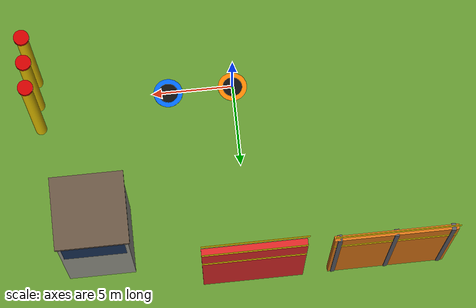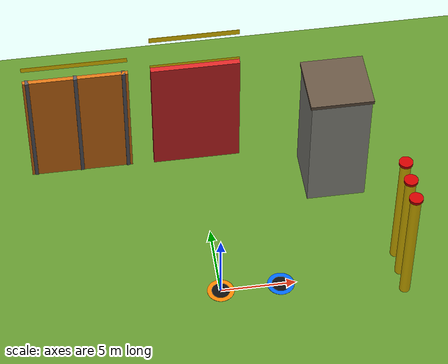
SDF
<sdf version="1.9">
 <world name="obstacle_course">
  <physics type="ode">
   <max_step_size>0.004</max_step_size>
   <real_time_factor>1.0</real_time_factor>
   <real_time_update_rate>250</real_time_update_rate>
  </physics>
  <gravity>0 0 -9.8</gravity>
  <magnetic_field>6e-06 2.3e-05 -4.2e-05</magnetic_field>
  <atmosphere type="adiabatic"/>
  <scene>
   <sky><clouds><speed>6</speed></clouds></sky>
   <grid>false</grid>
   <ambient>0.6 0.6 0.55 1</ambient>
   <background>0.53 0.77 0.92 1</background>
   <shadows>true</shadows>
  </scene>
  <light name="sun" type="directional">
   <pose>0 0 500 0 0 0</pose>
   <intensity>1</intensity>
   <direction>-0.5 0.3 -0.8</direction>
   <diffuse>0.95 0.90 0.80 1</diffuse>
   <specular>0.30 0.28 0.24 1</specular>
   <attenuation><range>2000</range><linear>0</linear><constant>1</constant><quadratic>0</quadratic></attenuation>
   <spot><inner_angle>0</inner_angle><outer_angle>0</outer_angle><falloff>0</falloff></spot>
  </light>
  <light name="sky_fill" type="directional">
   <cast_shadows>false</cast_shadows>
   <pose>0 0 100 0 0 0</pose>
   <direction>0 0 -1</direction>
   <diffuse>0.35 0.45 0.55 1</diffuse>
   <specular>0.05 0.05 0.05 1</specular>
   <attenuation><range>2000</range><constant>1</constant><linear>0</linear><quadratic>0</quadratic></attenuation>
  </light>
  <model name="grass_ground">
   <static>true</static>
   <link name="link">
    <collision name="collision">
     <geometry><plane><normal>0 0 1</normal><size>1 1</size></plane></geometry>
     <surface>
      <friction><ode><mu>0.8</mu><mu2>0.8</mu2></ode></friction>
      <contact><collide_bitmask>65535</collide_bitmask></contact>
     </surface>
    </collision>
    <visual name="visual">
     <cast_shadows>false</cast_shadows>
     <geometry><plane><normal>0 0 1</normal><size>300 300</size></plane></geometry>
     <material>
      <ambient>0.28 0.45 0.12 1</ambient>
      <diffuse>0.38 0.58 0.18 1</diffuse>
      <specular>0.02 0.03 0.01 1</specular>
     </material>
    </visual>
   </link>
  </model>
  <spherical_coordinates>
   <surface_model>EARTH_WGS84</surface_model>
   <world_frame_orientation>ENU</world_frame_orientation>
   <latitude_deg>47.397971057728974</latitude_deg>
   <longitude_deg>8.546163739800146</longitude_deg>
   <elevation>0</elevation>
  </spherical_coordinates>
  <model name="landing_pad_0">
   <static>true</static>
   <pose>0 0 0.005 0 0 0</pose>
   <link name="link">
    <visual name="vis_ring">
     <geometry><cylinder><radius>0.9</radius><length>0.01</length></cylinder></geometry>
     <material><ambient>0.9 0.4 0.0 1</ambient><diffuse>1.0 0.5 0.0 1</diffuse></material>
    </visual>
    <visual name="vis_inner">
     <pose>0 0 0.001 0 0 0</pose>
     <geometry><cylinder><radius>0.6</radius><length>0.01</length></cylinder></geometry>
     <material><ambient>0.0 0.0 0.0 1</ambient><diffuse>0.05 0.05 0.05 1</diffuse></material>
    </visual>
    <visual name="vis_label_n">
     <pose>0 0.35 0.002 0 0 0</pose>
     <geometry><box><size>0.06 0.3 0.01</size></box></geometry>
     <material><ambient>0.9 0.9 0.9 1</ambient><diffuse>1 1 1 1</diffuse></material>
    </visual>
    <collision name="col">
     <geometry><cylinder><radius>0.9</radius><length>0.01</length></cylinder></geometry>
    </collision>
   </link>
  </model>
  <model name="landing_pad_1">
   <static>true</static>
   <pose>4 0 0.005 0 0 0</pose>
   <link name="link">
    <visual name="vis_ring">
     <geometry><cylinder><radius>0.9</radius><length>0.01</length></cylinder></geometry>
     <material><ambient>0.0 0.3 0.9 1</ambient><diffuse>0.0 0.4 1.0 1</diffuse></material>
    </visual>
    <visual name="vis_inner">
     <pose>0 0 0.001 0 0 0</pose>
     <geometry><cylinder><radius>0.6</radius><length>0.01</length></cylinder></geometry>
     <material><ambient>0.0 0.0 0.0 1</ambient><diffuse>0.05 0.05 0.05 1</diffuse></material>
    </visual>
    <collision name="col">
     <geometry><cylinder><radius>0.9</radius><length>0.01</length></cylinder></geometry>
    </collision>
   </link>
  </model>
  <model name="obstacle_wall_north">
   <static>true</static>
   <pose>0 12 4.5 0 0 0</pose>
   <link name="link">
    <collision name="col">
     <geometry><box><size>6.0 0.4 9.0</size></box></geometry>
     <surface>
      <friction><ode><mu>1.0</mu><mu2>1.0</mu2></ode></friction>
      <contact><collide_bitmask>65535</collide_bitmask></contact>
     </surface>
    </collision>
    <visual name="vis_body">
     <geometry><box><size>6.0 0.4 9.0</size></box></geometry>
     <material>
      <ambient>0.70 0.10 0.10 1</ambient>
      <diffuse>0.85 0.15 0.15 1</diffuse>
      <specular>0.05 0.01 0.01 1</specular>
     </material>
    </visual>
    <visual name="vis_stripe_0">
     <pose>0 0.21 2.0 0 0 0</pose>
     <geometry><box><size>6.0 0.01 0.4</size></box></geometry>
     <material><ambient>0.9 0.7 0.0 1</ambient><diffuse>1.0 0.85 0.0 1</diffuse></material>
    </visual>
    <visual name="vis_stripe_1">
     <pose>0 0.21 4.5 0 0 0</pose>
     <geometry><box><size>6.0 0.01 0.4</size></box></geometry>
     <material><ambient>0.9 0.7 0.0 1</ambient><diffuse>1.0 0.85 0.0 1</diffuse></material>
    </visual>
    <visual name="vis_stripe_2">
     <pose>0 0.21 7.0 0 0 0</pose>
     <geometry><box><size>6.0 0.01 0.4</size></box></geometry>
     <material><ambient>0.9 0.7 0.0 1</ambient><diffuse>1.0 0.85 0.0 1</diffuse></material>
    </visual>
   </link>
  </model>
  <model name="obstacle_pole_east_0">
   <static>true</static>
   <pose>12 -1.5 4.5 0 0 0</pose>
   <link name="link">
    <collision name="col">
     <geometry><cylinder><radius>0.35</radius><length>9.0</length></cylinder></geometry>
     <surface>
      <friction><ode><mu>1.0</mu><mu2>1.0</mu2></ode></friction>
      <contact><collide_bitmask>65535</collide_bitmask></contact>
     </surface>
    </collision>
    <visual name="vis">
     <geometry><cylinder><radius>0.35</radius><length>9.0</length></cylinder></geometry>
     <material>
      <ambient>0.80 0.65 0.00 1</ambient>
      <diffuse>0.95 0.80 0.00 1</diffuse>
      <specular>0.1 0.08 0.0 1</specular>
     </material>
    </visual>
    <visual name="vis_top">
     <pose>0 0 4.6 0 0 0</pose>
     <geometry><cylinder><radius>0.45</radius><length>0.2</length></cylinder></geometry>
     <material><ambient>0.6 0.0 0.0 1</ambient><diffuse>0.8 0.0 0.0 1</diffuse></material>
    </visual>
   </link>
  </model>
  <model name="obstacle_pole_east_1">
   <static>true</static>
   <pose>12 0 4.5 0 0 0</pose>
   <link name="link">
    <collision name="col">
     <geometry><cylinder><radius>0.35</radius><length>9.0</length></cylinder></geometry>
     <surface>
      <friction><ode><mu>1.0</mu><mu2>1.0</mu2></ode></friction>
      <contact><collide_bitmask>65535</collide_bitmask></contact>
     </surface>
    </collision>
    <visual name="vis">
     <geometry><cylinder><radius>0.35</radius><length>9.0</length></cylinder></geometry>
     <material>
      <ambient>0.80 0.65 0.00 1</ambient>
      <diffuse>0.95 0.80 0.00 1</diffuse>
      <specular>0.1 0.08 0.0 1</specular>
     </material>
    </visual>
    <visual name="vis_top">
     <pose>0 0 4.6 0 0 0</pose>
     <geometry><cylinder><radius>0.45</radius><length>0.2</length></cylinder></geometry>
     <material><ambient>0.6 0.0 0.0 1</ambient><diffuse>0.8 0.0 0.0 1</diffuse></material>
    </visual>
   </link>
  </model>
  <model name="obstacle_pole_east_2">
   <static>true</static>
   <pose>12 1.5 4.5 0 0 0</pose>
   <link name="link">
    <collision name="col">
     <geometry><cylinder><radius>0.35</radius><length>9.0</length></cylinder></geometry>
     <surface>
      <friction><ode><mu>1.0</mu><mu2>1.0</mu2></ode></friction>
      <contact><collide_bitmask>65535</collide_bitmask></contact>
     </surface>
    </collision>
    <visual name="vis">
     <geometry><cylinder><radius>0.35</radius><length>9.0</length></cylinder></geometry>
     <material>
      <ambient>0.80 0.65 0.00 1</ambient>
      <diffuse>0.95 0.80 0.00 1</diffuse>
      <specular>0.1 0.08 0.0 1</specular>
     </material>
    </visual>
    <visual name="vis_top">
     <pose>0 0 4.6 0 0 0</pose>
     <geometry><cylinder><radius>0.45</radius><length>0.2</length></cylinder></geometry>
     <material><ambient>0.6 0.0 0.0 1</ambient><diffuse>0.8 0.0 0.0 1</diffuse></material>
    </visual>
   </link>
  </model>
  <model name="obstacle_building_ne">
   <static>true</static>
   <pose>9 9 4.5 0 0 0</pose>
   <link name="link">
    <collision name="col">
     <geometry><box><size>4.0 4.0 9.0</size></box></geometry>
     <surface>
      <friction><ode><mu>1.0</mu><mu2>1.0</mu2></ode></friction>
      <contact><collide_bitmask>65535</collide_bitmask></contact>
     </surface>
    </collision>
    <visual name="vis_walls">
     <geometry><box><size>4.0 4.0 9.0</size></box></geometry>
     <material>
      <ambient>0.45 0.45 0.42 1</ambient>
      <diffuse>0.60 0.60 0.56 1</diffuse>
      <specular>0.08 0.08 0.08 1</specular>
     </material>
    </visual>
    <visual name="vis_windows_n">
     <pose>0 2.01 3.0 0 0 0</pose>
     <geometry><box><size>3.6 0.05 2.5</size></box></geometry>
     <material><ambient>0.1 0.15 0.25 1</ambient><diffuse>0.1 0.2 0.35 1</diffuse></material>
    </visual>
    <visual name="vis_windows_e">
     <pose>2.01 0 3.0 0 0 0</pose>
     <geometry><box><size>0.05 3.6 2.5</size></box></geometry>
     <material><ambient>0.1 0.15 0.25 1</ambient><diffuse>0.1 0.2 0.35 1</diffuse></material>
    </visual>
    <visual name="vis_roof">
     <pose>0 0 4.6 0 0 0</pose>
     <geometry><box><size>4.2 4.2 0.25</size></box></geometry>
     <material><ambient>0.30 0.25 0.20 1</ambient><diffuse>0.40 0.33 0.26 1</diffuse></material>
    </visual>
   </link>
  </model>
  <model name="obstacle_fence_nnw">
   <static>true</static>
   <pose>-8 12 4.5 0 0 0</pose>
   <link name="link">
    <collision name="col_panel">
     <geometry><box><size>7.0 0.3 9.0</size></box></geometry>
     <surface>
      <friction><ode><mu>1.0</mu><mu2>1.0</mu2></ode></friction>
      <contact><collide_bitmask>65535</collide_bitmask></contact>
     </surface>
    </collision>
    <visual name="vis_panel">
     <geometry><box><size>7.0 0.3 9.0</size></box></geometry>
     <material>
      <ambient>0.70 0.35 0.05 1</ambient>
      <diffuse>0.85 0.45 0.08 1</diffuse>
      <specular>0.15 0.08 0.02 1</specular>
     </material>
    </visual>
    <visual name="vis_post_l">
     <pose>-3.2 0 0 0 0 0</pose>
     <geometry><box><size>0.25 0.4 9.0</size></box></geometry>
     <material><ambient>0.25 0.25 0.28 1</ambient><diffuse>0.35 0.35 0.38 1</diffuse></material>
    </visual>
    <visual name="vis_post_c">
     <geometry><box><size>0.25 0.4 9.0</size></box></geometry>
     <material><ambient>0.25 0.25 0.28 1</ambient><diffuse>0.35 0.35 0.38 1</diffuse></material>
    </visual>
    <visual name="vis_post_r">
     <pose>3.2 0 0 0 0 0</pose>
     <geometry><box><size>0.25 0.4 9.0</size></box></geometry>
     <material><ambient>0.25 0.25 0.28 1</ambient><diffuse>0.35 0.35 0.38 1</diffuse></material>
    </visual>
    <visual name="vis_stripe_a">
     <pose>0 0.16 5.5 0 0 0</pose>
     <geometry><box><size>7.0 0.02 0.35</size></box></geometry>
     <material><ambient>0.9 0.7 0.0 1</ambient><diffuse>1.0 0.85 0.0 1</diffuse></material>
    </visual>
    <visual name="vis_stripe_b">
     <pose>0 0.16 3.0 0 0 0</pose>
     <geometry><box><size>7.0 0.02 0.35</size></box></geometry>
     <material><ambient>0.9 0.7 0.0 1</ambient><diffuse>1.0 0.85 0.0 1</diffuse></material>
    </visual>
   </link>
  </model>
 </world>
</sdf>
